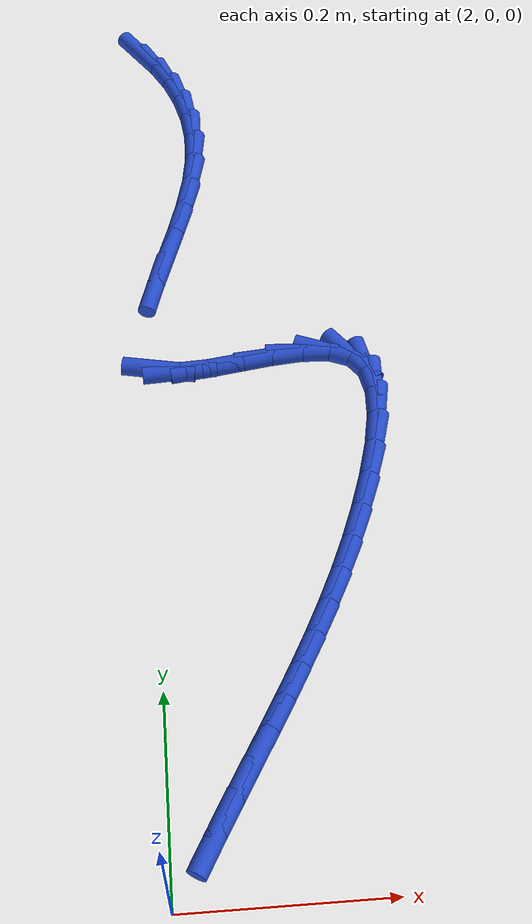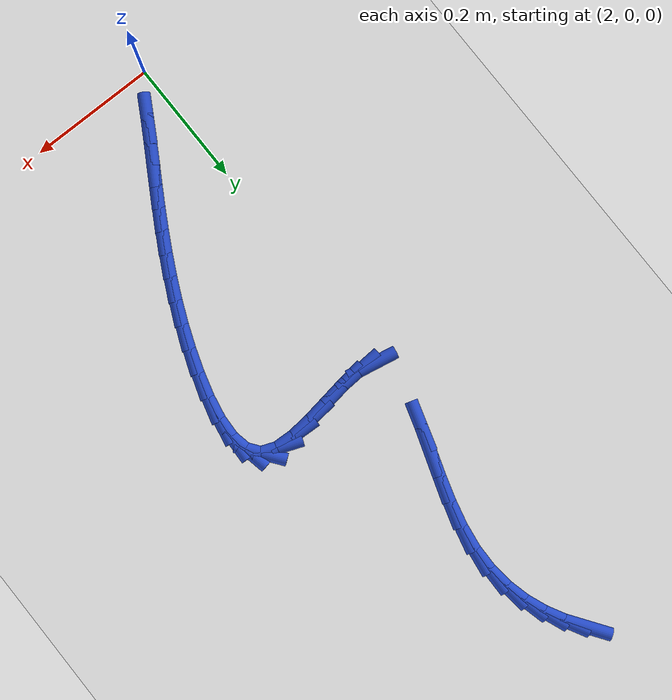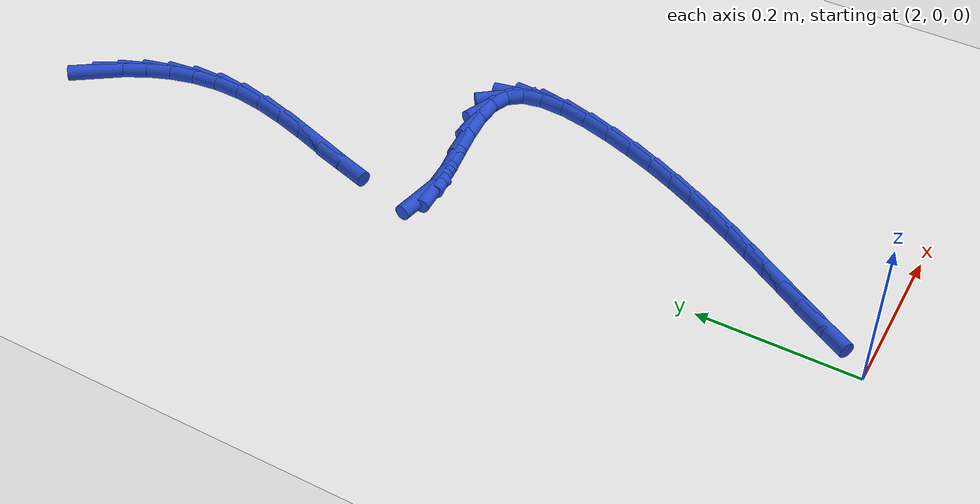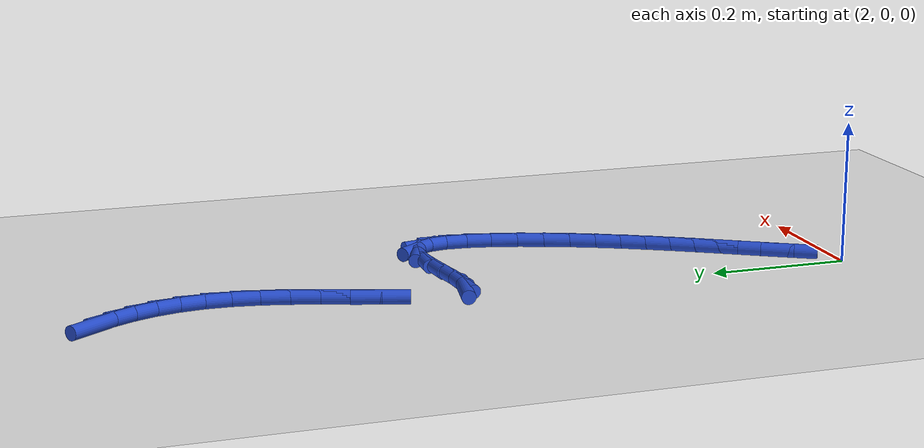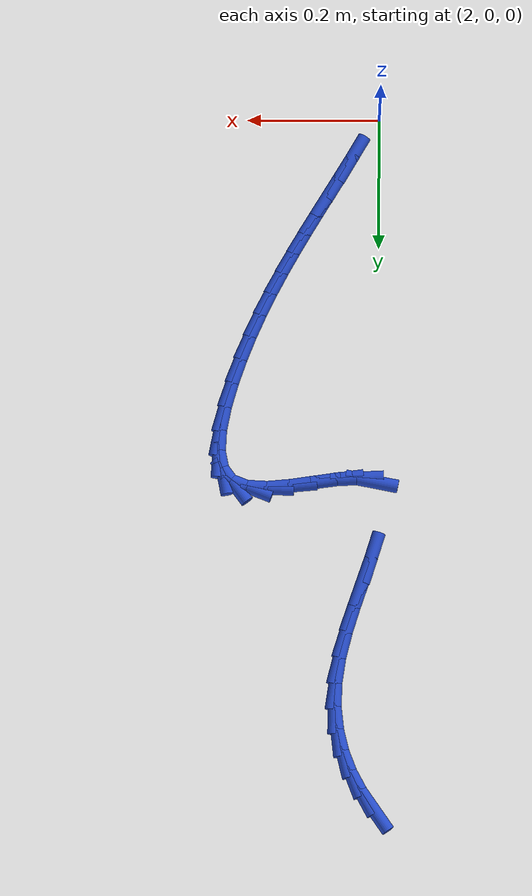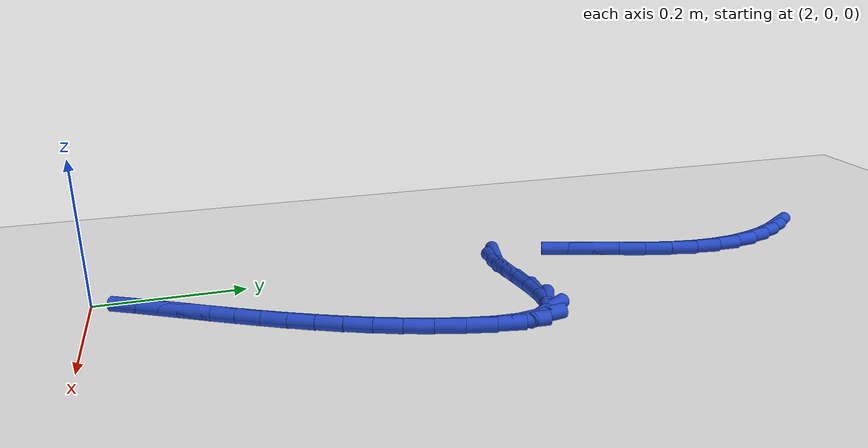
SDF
<sdf version="1.6">
 <world name="default">
  <model name="ground_plane">
   <static>1</static>
   <link name="link">
    <collision name="collision">
     <geometry><plane><normal>0 0 1</normal><size>100 100</size></plane></geometry>
     <surface><friction><ode><mu>100</mu><mu2>50</mu2></ode></friction></surface>
    </collision>
    <visual name="visual">
     <cast_shadows>0</cast_shadows>
     <geometry><plane><normal>0 0 1</normal><size>100 100</size></plane></geometry>
     <material>
      <script><uri>file://media/materials/scripts/gazebo.material</uri><name>Gazebo/WhiteGlow</name></script>
     </material>
    </visual>
   </link>
  </model>
  <model name="line">
   <link name="link_108">
    <pose>2.005088898615938 1.0550120812540253 0.01 0 1.57 -0.9610941166038868</pose>
    <collision name="collision">
     <geometry><cylinder><radius>0.01</radius><length>0.08</length></cylinder></geometry>
    </collision>
    <visual name="visual">
     <material>
      <script><name>Gazebo/Blue</name><uri>file://media/materials/scripts/gazebo.material</uri></script>
     </material>
     <geometry><cylinder><radius>0.01</radius><length>0.08</length></cylinder></geometry>
    </visual>
   </link>
   <link name="link_109">
    <pose>2.023289723049599 1.0289541604359271 0.01 0 1.57 -1.0766922288657708</pose>
    <collision name="collision">
     <geometry><cylinder><radius>0.01</radius><length>0.08</length></cylinder></geometry>
    </collision>
    <visual name="visual">
     <material>
      <script><name>Gazebo/Blue</name><uri>file://media/materials/scripts/gazebo.material</uri></script>
     </material>
     <geometry><cylinder><radius>0.01</radius><length>0.08</length></cylinder></geometry>
    </visual>
   </link>
   <link name="link_110">
    <pose>2.0384775380448437 1.0007592106245669 0.01 0 1.57 -1.1993491125426279</pose>
    <collision name="collision">
     <geometry><cylinder><radius>0.01</radius><length>0.08</length></cylinder></geometry>
    </collision>
    <visual name="visual">
     <material>
      <script><name>Gazebo/Blue</name><uri>file://media/materials/scripts/gazebo.material</uri></script>
     </material>
     <geometry><cylinder><radius>0.01</radius><length>0.08</length></cylinder></geometry>
    </visual>
   </link>
   <link name="link_111">
    <pose>2.050265577368985 0.97049692340369 0.01 0 1.57 -1.3276707050871868</pose>
    <collision name="collision">
     <geometry><cylinder><radius>0.01</radius><length>0.08</length></cylinder></geometry>
    </collision>
    <visual name="visual">
     <material>
      <script><name>Gazebo/Blue</name><uri>file://media/materials/scripts/gazebo.material</uri></script>
     </material>
     <geometry><cylinder><radius>0.01</radius><length>0.08</length></cylinder></geometry>
    </visual>
   </link>
   <link name="link_112">
    <pose>2.0582670747893337 0.9382369903570416 0.01 0 1.57 -1.459285815605267</pose>
    <collision name="collision">
     <geometry><cylinder><radius>0.01</radius><length>0.08</length></cylinder></geometry>
    </collision>
    <visual name="visual">
     <material>
      <script><name>Gazebo/Blue</name><uri>file://media/materials/scripts/gazebo.material</uri></script>
     </material>
     <geometry><cylinder><radius>0.01</radius><length>0.08</length></cylinder></geometry>
    </visual>
   </link>
   <link name="link_113">
    <pose>2.062095264073203 0.9040491030683673 0.01 0 1.57 1.5504950037317313</pose>
    <collision name="collision">
     <geometry><cylinder><radius>0.01</radius><length>0.08</length></cylinder></geometry>
    </collision>
    <visual name="visual">
     <material>
      <script><name>Gazebo/Blue</name><uri>file://media/materials/scripts/gazebo.material</uri></script>
     </material>
     <geometry><cylinder><radius>0.01</radius><length>0.08</length></cylinder></geometry>
    </visual>
   </link>
   <link name="link_114">
    <pose>2.061363378987904 0.8680029531214117 0.01 0 1.57 1.4250232080914953</pose>
    <collision name="collision">
     <geometry><cylinder><radius>0.01</radius><length>0.08</length></cylinder></geometry>
    </collision>
    <visual name="visual">
     <material>
      <script><name>Gazebo/Blue</name><uri>file://media/materials/scripts/gazebo.material</uri></script>
     </material>
     <geometry><cylinder><radius>0.01</radius><length>0.08</length></cylinder></geometry>
    </visual>
   </link>
   <link name="link_115">
    <pose>2.055818191220348 0.8302329306874273 0.01 0 1.57 1.3316773183267614</pose>
    <collision name="collision">
     <geometry><cylinder><radius>0.01</radius><length>0.08</length></cylinder></geometry>
    </collision>
    <visual name="visual">
     <material>
      <script><name>Gazebo/Blue</name><uri>file://media/materials/scripts/gazebo.material</uri></script>
     </material>
     <geometry><cylinder><radius>0.01</radius><length>0.08</length></cylinder></geometry>
    </visual>
   </link>
   <link name="link_116">
    <pose>2.04635915233708 0.7914318947252806 0.01 0 1.57 1.2739670982101654</pose>
    <collision name="collision">
     <geometry><cylinder><radius>0.01</radius><length>0.08</length></cylinder></geometry>
    </collision>
    <visual name="visual">
     <material>
      <script><name>Gazebo/Blue</name><uri>file://media/materials/scripts/gazebo.material</uri></script>
     </material>
     <geometry><cylinder><radius>0.01</radius><length>0.08</length></cylinder></geometry>
    </visual>
   </link>
   <link name="link_117">
    <pose>2.0344751788585707 0.7525782976044425 0.01 0 1.57 1.2449356092673751</pose>
    <collision name="collision">
     <geometry><cylinder><radius>0.01</radius><length>0.08</length></cylinder></geometry>
    </collision>
    <visual name="visual">
     <material>
      <script><name>Gazebo/Blue</name><uri>file://media/materials/scripts/gazebo.material</uri></script>
     </material>
     <geometry><cylinder><radius>0.01</radius><length>0.08</length></cylinder></geometry>
    </visual>
   </link>
   <link name="link_118">
    <pose>2.0216599395579617 0.7146528941417808 0.01 0 1.57 1.242877600559773</pose>
    <collision name="collision">
     <geometry><cylinder><radius>0.01</radius><length>0.08</length></cylinder></geometry>
    </collision>
    <visual name="visual">
     <material>
      <script><name>Gazebo/Blue</name><uri>file://media/materials/scripts/gazebo.material</uri></script>
     </material>
     <geometry><cylinder><radius>0.01</radius><length>0.08</length></cylinder></geometry>
    </visual>
   </link>
   <link name="link_119">
    <pose>2.009407103208396 0.6786364391541646 0.01 0 1.57 1.2721893562103186</pose>
    <collision name="collision">
     <geometry><cylinder><radius>0.01</radius><length>0.08</length></cylinder></geometry>
    </collision>
    <visual name="visual">
     <material>
      <script><name>Gazebo/Blue</name><uri>file://media/materials/scripts/gazebo.material</uri></script>
     </material>
     <geometry><cylinder><radius>0.01</radius><length>0.08</length></cylinder></geometry>
    </visual>
   </link>
   <link name="link_124">
    <pose>2.008857372786255 0.5615148099321744 0.01 0 1.57 -0.19034464176160937</pose>
    <collision name="collision">
     <geometry><cylinder><radius>0.01</radius><length>0.08</length></cylinder></geometry>
    </collision>
    <visual name="visual">
     <material>
      <script><name>Gazebo/Blue</name><uri>file://media/materials/scripts/gazebo.material</uri></script>
     </material>
     <geometry><cylinder><radius>0.01</radius><length>0.08</length></cylinder></geometry>
    </visual>
   </link>
   <link name="link_125">
    <pose>2.030985850383386 0.5572511557163576 0.01 0 1.57 0.054880659279225245</pose>
    <collision name="collision">
     <geometry><cylinder><radius>0.01</radius><length>0.08</length></cylinder></geometry>
    </collision>
    <visual name="visual">
     <material>
      <script><name>Gazebo/Blue</name><uri>file://media/materials/scripts/gazebo.material</uri></script>
     </material>
     <geometry><cylinder><radius>0.01</radius><length>0.08</length></cylinder></geometry>
    </visual>
   </link>
   <link name="link_126">
    <pose>2.0606348557671277 0.5588799482534573 0.01 0 1.57 0.14081580610862862</pose>
    <collision name="collision">
     <geometry><cylinder><radius>0.01</radius><length>0.08</length></cylinder></geometry>
    </collision>
    <visual name="visual">
     <material>
      <script><name>Gazebo/Blue</name><uri>file://media/materials/scripts/gazebo.material</uri></script>
     </material>
     <geometry><cylinder><radius>0.01</radius><length>0.08</length></cylinder></geometry>
    </visual>
   </link>
   <link name="link_127">
    <pose>2.094869178106712 0.5637328003150139 0.01 0 1.57 0.1494632517940743</pose>
    <collision name="collision">
     <geometry><cylinder><radius>0.01</radius><length>0.08</length></cylinder></geometry>
    </collision>
    <visual name="visual">
     <material>
      <script><name>Gazebo/Blue</name><uri>file://media/materials/scripts/gazebo.material</uri></script>
     </material>
     <geometry><cylinder><radius>0.01</radius><length>0.08</length></cylinder></geometry>
    </visual>
   </link>
   <link name="link_128">
    <pose>2.1307464443923547 0.569135423449025 0.01 0 1.57 0.09452116513278942</pose>
    <collision name="collision">
     <geometry><cylinder><radius>0.01</radius><length>0.08</length></cylinder></geometry>
    </collision>
    <visual name="visual">
     <material>
      <script><name>Gazebo/Blue</name><uri>file://media/materials/scripts/gazebo.material</uri></script>
     </material>
     <geometry><cylinder><radius>0.01</radius><length>0.08</length></cylinder></geometry>
    </visual>
   </link>
   <link name="link_129">
    <pose>2.1653242816142706 0.5724135292034878 0.01 0 1.57 -0.050086579026350955</pose>
    <collision name="collision">
     <geometry><cylinder><radius>0.01</radius><length>0.08</length></cylinder></geometry>
    </collision>
    <visual name="visual">
     <material>
      <script><name>Gazebo/Blue</name><uri>file://media/materials/scripts/gazebo.material</uri></script>
     </material>
     <geometry><cylinder><radius>0.01</radius><length>0.08</length></cylinder></geometry>
    </visual>
   </link>
   <link name="link_130">
    <pose>2.1956603167626754 0.5708928291264002 0.01 0 1.57 -0.37052704595011426</pose>
    <collision name="collision">
     <geometry><cylinder><radius>0.01</radius><length>0.08</length></cylinder></geometry>
    </collision>
    <visual name="visual">
     <material>
      <script><name>Gazebo/Blue</name><uri>file://media/materials/scripts/gazebo.material</uri></script>
     </material>
     <geometry><cylinder><radius>0.01</radius><length>0.08</length></cylinder></geometry>
    </visual>
   </link>
   <link name="link_131">
    <pose>2.218812176893749 0.5618990348355328 0.01 0 1.57 -0.9254686992214375</pose>
    <collision name="collision">
     <geometry><cylinder><radius>0.01</radius><length>0.08</length></cylinder></geometry>
    </collision>
    <visual name="visual">
     <material>
      <script><name>Gazebo/Blue</name><uri>file://media/materials/scripts/gazebo.material</uri></script>
     </material>
     <geometry><cylinder><radius>0.01</radius><length>0.08</length></cylinder></geometry>
    </visual>
   </link>
   <link name="link_132">
    <pose>2.2326086604279016 0.5435735521882068 0.01 0 1.57 -1.3714012818335735</pose>
    <collision name="collision">
     <geometry><cylinder><radius>0.01</radius><length>0.08</length></cylinder></geometry>
    </collision>
    <visual name="visual">
     <material>
      <script><name>Gazebo/Blue</name><uri>file://media/materials/scripts/gazebo.material</uri></script>
     </material>
     <geometry><cylinder><radius>0.01</radius><length>0.08</length></cylinder></geometry>
    </visual>
   </link>
   <link name="link_133">
    <pose>2.237922568054153 0.51727753200487 0.01 0 1.57 1.522722161925129</pose>
    <collision name="collision">
     <geometry><cylinder><radius>0.01</radius><length>0.08</length></cylinder></geometry>
    </collision>
    <visual name="visual">
     <material>
      <script><name>Gazebo/Blue</name><uri>file://media/materials/scripts/gazebo.material</uri></script>
     </material>
     <geometry><cylinder><radius>0.01</radius><length>0.08</length></cylinder></geometry>
    </visual>
   </link>
   <link name="link_134">
    <pose>2.23637766401747 0.48516644485785493 0.01 0 1.57 1.3834790353566064</pose>
    <collision name="collision">
     <geometry><cylinder><radius>0.01</radius><length>0.08</length></cylinder></geometry>
    </collision>
    <visual name="visual">
     <material>
      <script><name>Gazebo/Blue</name><uri>file://media/materials/scripts/gazebo.material</uri></script>
     </material>
     <geometry><cylinder><radius>0.01</radius><length>0.08</length></cylinder></geometry>
    </visual>
   </link>
   <link name="link_135">
    <pose>2.229597712562817 0.44939576131949566 0.01 0 1.57 1.2989251801683757</pose>
    <collision name="collision">
     <geometry><cylinder><radius>0.01</radius><length>0.08</length></cylinder></geometry>
    </collision>
    <visual name="visual">
     <material>
      <script><name>Gazebo/Blue</name><uri>file://media/materials/scripts/gazebo.material</uri></script>
     </material>
     <geometry><cylinder><radius>0.01</radius><length>0.08</length></cylinder></geometry>
    </visual>
   </link>
   <link name="link_136">
    <pose>2.21920647793516 0.4121209519621259 0.01 0 1.57 1.2439525383354262</pose>
    <collision name="collision">
     <geometry><cylinder><radius>0.01</radius><length>0.08</length></cylinder></geometry>
    </collision>
    <visual name="visual">
     <material>
      <script><name>Gazebo/Blue</name><uri>file://media/materials/scripts/gazebo.material</uri></script>
     </material>
     <geometry><cylinder><radius>0.01</radius><length>0.08</length></cylinder></geometry>
    </visual>
   </link>
   <link name="link_137">
    <pose>2.2067486780132395 0.37537251329012894 0.01 0 1.57 1.1998172740190252</pose>
    <collision name="collision">
     <geometry><cylinder><radius>0.01</radius><length>0.08</length></cylinder></geometry>
    </collision>
    <visual name="visual">
     <material>
      <script><name>Gazebo/Blue</name><uri>file://media/materials/scripts/gazebo.material</uri></script>
     </material>
     <geometry><cylinder><radius>0.01</radius><length>0.08</length></cylinder></geometry>
    </visual>
   </link>
   <link name="link_138">
    <pose>2.1929364823790434 0.33986466438265106 0.01 0 1.57 1.1601288834663428</pose>
    <collision name="collision">
     <geometry><cylinder><radius>0.01</radius><length>0.08</length></cylinder></geometry>
    </collision>
    <visual name="visual">
     <material>
      <script><name>Gazebo/Blue</name><uri>file://media/materials/scripts/gazebo.material</uri></script>
     </material>
     <geometry><cylinder><radius>0.01</radius><length>0.08</length></cylinder></geometry>
    </visual>
   </link>
   <link name="link_139">
    <pose>2.1779832876012586 0.30552305306082495 0.01 0 1.57 1.1251704771104079</pose>
    <collision name="collision">
     <geometry><cylinder><radius>0.01</radius><length>0.08</length></cylinder></geometry>
    </collision>
    <visual name="visual">
     <material>
      <script><name>Gazebo/Blue</name><uri>file://media/materials/scripts/gazebo.material</uri></script>
     </material>
     <geometry><cylinder><radius>0.01</radius><length>0.08</length></cylinder></geometry>
    </visual>
   </link>
   <link name="link_140">
    <pose>2.1620957423074936 0.27226265850044196 0.01 0 1.57 1.0952408219314997</pose>
    <collision name="collision">
     <geometry><cylinder><radius>0.01</radius><length>0.08</length></cylinder></geometry>
    </collision>
    <visual name="visual">
     <material>
      <script><name>Gazebo/Blue</name><uri>file://media/materials/scripts/gazebo.material</uri></script>
     </material>
     <geometry><cylinder><radius>0.01</radius><length>0.08</length></cylinder></geometry>
    </visual>
   </link>
   <link name="link_141">
    <pose>2.1454804951253554 0.23999845987729168 0.01 0 1.57 1.0705982251381798</pose>
    <collision name="collision">
     <geometry><cylinder><radius>0.01</radius><length>0.08</length></cylinder></geometry>
    </collision>
    <visual name="visual">
     <material>
      <script><name>Gazebo/Blue</name><uri>file://media/materials/scripts/gazebo.material</uri></script>
     </material>
     <geometry><cylinder><radius>0.01</radius><length>0.08</length></cylinder></geometry>
    </visual>
   </link>
   <link name="link_142">
    <pose>2.1283441946824544 0.2086454363671658 0.01 0 1.57 1.0514828045437703</pose>
    <collision name="collision">
     <geometry><cylinder><radius>0.01</radius><length>0.08</length></cylinder></geometry>
    </collision>
    <visual name="visual">
     <material>
      <script><name>Gazebo/Blue</name><uri>file://media/materials/scripts/gazebo.material</uri></script>
     </material>
     <geometry><cylinder><radius>0.01</radius><length>0.08</length></cylinder></geometry>
    </visual>
   </link>
   <link name="link_143">
    <pose>2.1108934896063984 0.1781185671458549 0.01 0 1.57 1.0381389242603412</pose>
    <collision name="collision">
     <geometry><cylinder><radius>0.01</radius><length>0.08</length></cylinder></geometry>
    </collision>
    <visual name="visual">
     <material>
      <script><name>Gazebo/Blue</name><uri>file://media/materials/scripts/gazebo.material</uri></script>
     </material>
     <geometry><cylinder><radius>0.01</radius><length>0.08</length></cylinder></geometry>
    </visual>
   </link>
   <link name="link_144">
    <pose>2.0933350285247956 0.14833283138915 0.01 0 1.57 1.0308364968071817</pose>
    <collision name="collision">
     <geometry><cylinder><radius>0.01</radius><length>0.08</length></cylinder></geometry>
    </collision>
    <visual name="visual">
     <material>
      <script><name>Gazebo/Blue</name><uri>file://media/materials/scripts/gazebo.material</uri></script>
     </material>
     <geometry><cylinder><radius>0.01</radius><length>0.08</length></cylinder></geometry>
    </visual>
   </link>
   <link name="link_145">
    <pose>2.0758754600652543 0.11920320827284188 0.01 0 1.57 1.029890134964361</pose>
    <collision name="collision">
     <geometry><cylinder><radius>0.01</radius><length>0.08</length></cylinder></geometry>
    </collision>
    <visual name="visual">
     <material>
      <script><name>Gazebo/Blue</name><uri>file://media/materials/scripts/gazebo.material</uri></script>
     </material>
     <geometry><cylinder><radius>0.01</radius><length>0.08</length></cylinder></geometry>
    </visual>
   </link>
   <link name="link_146">
    <pose>2.0587214328553833 0.09064467697272144 0.01 0 1.57 1.0356750366882537</pose>
    <collision name="collision">
     <geometry><cylinder><radius>0.01</radius><length>0.08</length></cylinder></geometry>
    </collision>
    <visual name="visual">
     <material>
      <script><name>Gazebo/Blue</name><uri>file://media/materials/scripts/gazebo.material</uri></script>
     </material>
     <geometry><cylinder><radius>0.01</radius><length>0.08</length></cylinder></geometry>
    </visual>
   </link>
   <link name="link_147">
    <pose>2.0420795955227913 0.0625722166645795 0.01 0 1.57 1.0486378839212134</pose>
    <collision name="collision">
     <geometry><cylinder><radius>0.01</radius><length>0.08</length></cylinder></geometry>
    </collision>
    <visual name="visual">
     <material>
      <script><name>Gazebo/Blue</name><uri>file://media/materials/scripts/gazebo.material</uri></script>
     </material>
     <geometry><cylinder><radius>0.01</radius><length>0.08</length></cylinder></geometry>
    </visual>
   </link>
  </model>
 </world>
</sdf>
